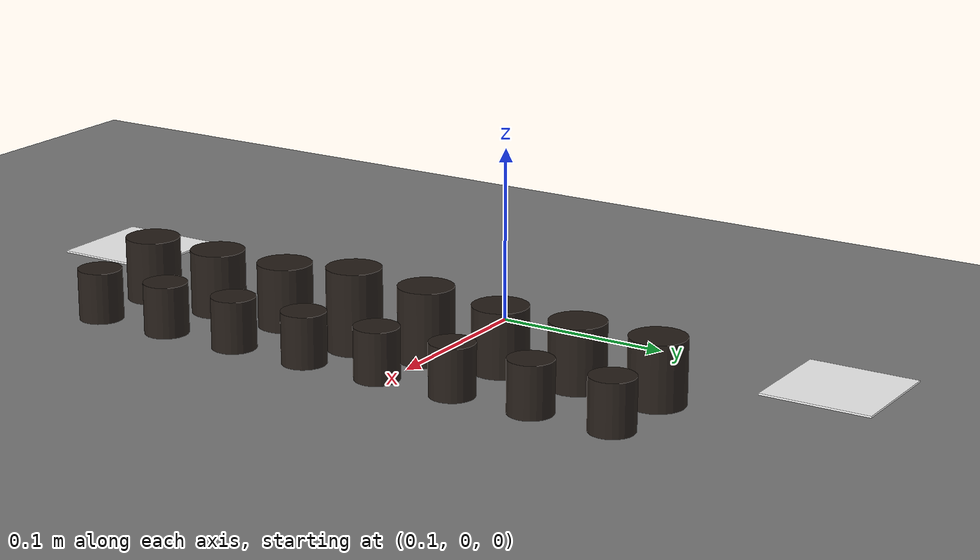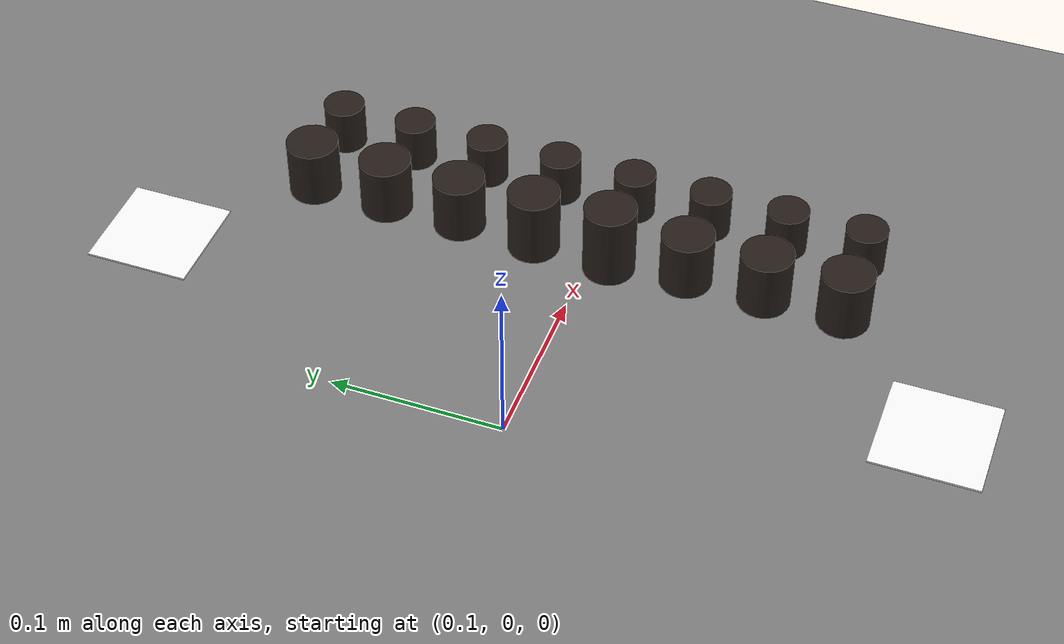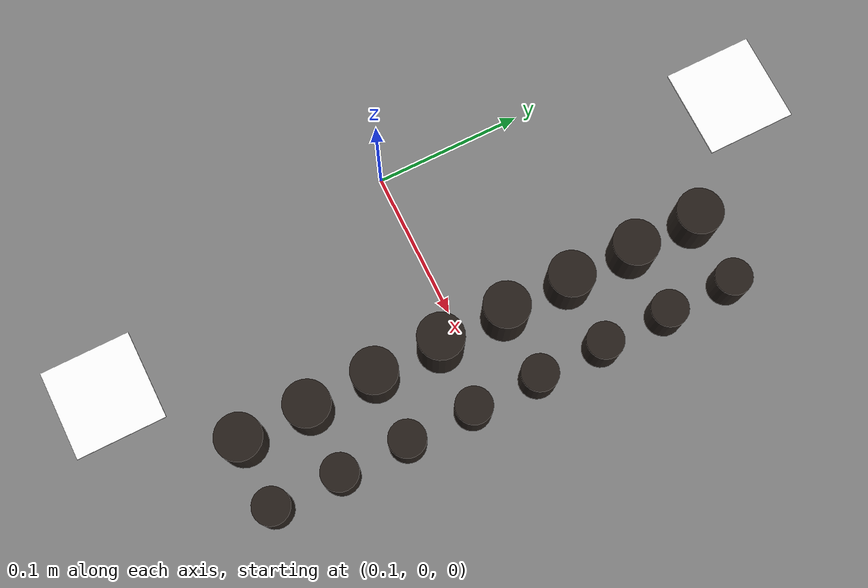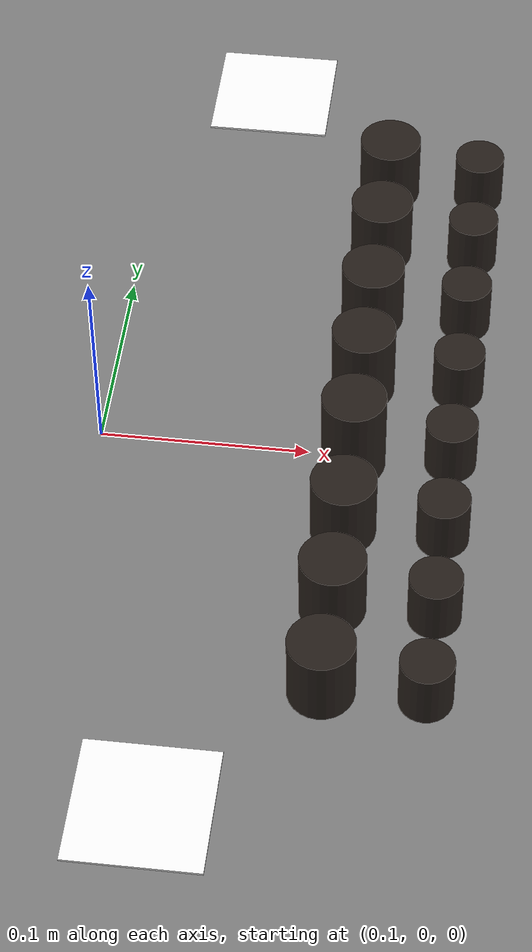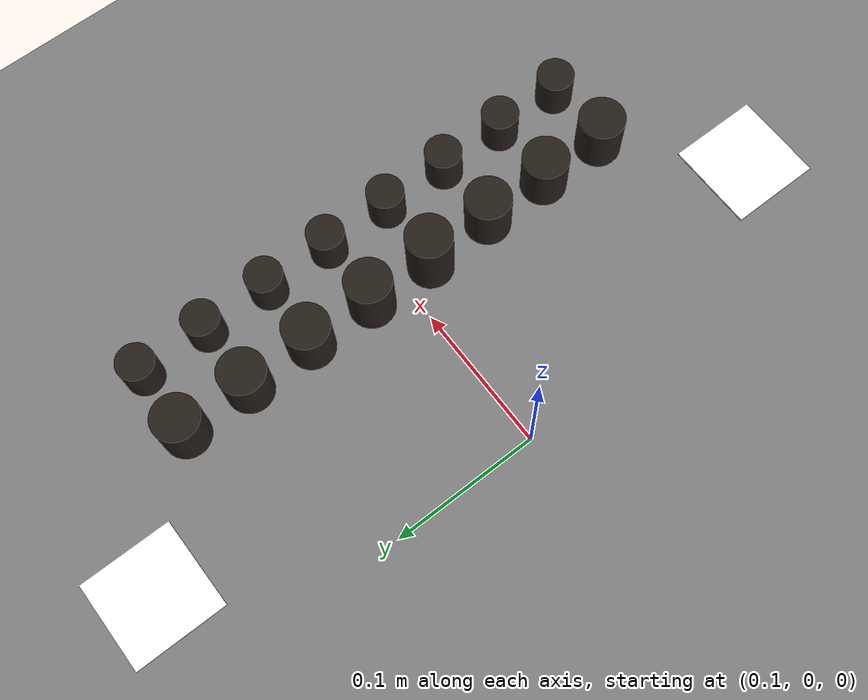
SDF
<sdf version="1.8">
 <world name="arm_world">
  <model name="ground_plane">
   <static>true</static>
   <link name="link">
    <collision name="collision">
     <geometry><plane><normal>0 0 1</normal><size>20 20</size></plane></geometry>
    </collision>
    <visual name="visual">
     <geometry><plane><normal>0 0 1</normal><size>20 20</size></plane></geometry>
     <material><ambient>0.3 0.3 0.3 1</ambient><diffuse>0.5 0.5 0.5 1</diffuse></material>
    </visual>
   </link>
  </model>
  <model name="bp_ra8">
   <pose>0.2225  0.1625 0.038 0 0 0</pose>
   <link name="l">
    <inertial>
     <mass>0.02</mass>
     <inertia>
      <ixx>0.000001</ixx>
      <iyy>0.000001</iyy>
      <izz>0.000001</izz>
      <ixy>0</ixy>
      <ixz>0</ixz>
      <iyz>0</iyz>
     </inertia>
    </inertial>
    <collision name="c">
     <geometry><cylinder><radius>0.015</radius><length>0.035</length></cylinder></geometry>
    </collision>
    <visual name="v">
     <geometry><cylinder><radius>0.015</radius><length>0.035</length></cylinder></geometry>
     <material><ambient>0.15 0.12 0.1 1</ambient><diffuse>0.15 0.12 0.1 1</diffuse></material>
    </visual>
   </link>
  </model>
  <model name="bp_nb8">
   <pose>0.2225  0.1175 0.038 0 0 0</pose>
   <link name="l">
    <inertial>
     <mass>0.02</mass>
     <inertia>
      <ixx>0.000001</ixx>
      <iyy>0.000001</iyy>
      <izz>0.000001</izz>
      <ixy>0</ixy>
      <ixz>0</ixz>
      <iyz>0</iyz>
     </inertia>
    </inertial>
    <collision name="c">
     <geometry><cylinder><radius>0.015</radius><length>0.035</length></cylinder></geometry>
    </collision>
    <visual name="v">
     <geometry><cylinder><radius>0.015</radius><length>0.035</length></cylinder></geometry>
     <material><ambient>0.15 0.12 0.1 1</ambient><diffuse>0.15 0.12 0.1 1</diffuse></material>
    </visual>
   </link>
  </model>
  <model name="bp_bc8">
   <pose>0.2225  0.0725 0.038 0 0 0</pose>
   <link name="l">
    <inertial>
     <mass>0.02</mass>
     <inertia>
      <ixx>0.000001</ixx>
      <iyy>0.000001</iyy>
      <izz>0.000001</izz>
      <ixy>0</ixy>
      <ixz>0</ixz>
      <iyz>0</iyz>
     </inertia>
    </inertial>
    <collision name="c">
     <geometry><cylinder><radius>0.015</radius><length>0.035</length></cylinder></geometry>
    </collision>
    <visual name="v">
     <geometry><cylinder><radius>0.015</radius><length>0.035</length></cylinder></geometry>
     <material><ambient>0.15 0.12 0.1 1</ambient><diffuse>0.15 0.12 0.1 1</diffuse></material>
    </visual>
   </link>
  </model>
  <model name="bp_qd8">
   <pose>0.2225  0.0275 0.038 0 0 0</pose>
   <link name="l">
    <inertial>
     <mass>0.02</mass>
     <inertia>
      <ixx>0.000001</ixx>
      <iyy>0.000001</iyy>
      <izz>0.000001</izz>
      <ixy>0</ixy>
      <ixz>0</ixz>
      <iyz>0</iyz>
     </inertia>
    </inertial>
    <collision name="c">
     <geometry><cylinder><radius>0.015</radius><length>0.040</length></cylinder></geometry>
    </collision>
    <visual name="v">
     <geometry><cylinder><radius>0.015</radius><length>0.040</length></cylinder></geometry>
     <material><ambient>0.15 0.12 0.1 1</ambient><diffuse>0.15 0.12 0.1 1</diffuse></material>
    </visual>
   </link>
  </model>
  <model name="bp_ke8">
   <pose>0.2225 -0.0175 0.038 0 0 0</pose>
   <link name="l">
    <inertial>
     <mass>0.02</mass>
     <inertia>
      <ixx>0.000001</ixx>
      <iyy>0.000001</iyy>
      <izz>0.000001</izz>
      <ixy>0</ixy>
      <ixz>0</ixz>
      <iyz>0</iyz>
     </inertia>
    </inertial>
    <collision name="c">
     <geometry><cylinder><radius>0.015</radius><length>0.045</length></cylinder></geometry>
    </collision>
    <visual name="v">
     <geometry><cylinder><radius>0.015</radius><length>0.045</length></cylinder></geometry>
     <material><ambient>0.15 0.12 0.1 1</ambient><diffuse>0.15 0.12 0.1 1</diffuse></material>
    </visual>
   </link>
  </model>
  <model name="bp_bf8">
   <pose>0.2225 -0.0625 0.038 0 0 0</pose>
   <link name="l">
    <inertial>
     <mass>0.02</mass>
     <inertia>
      <ixx>0.000001</ixx>
      <iyy>0.000001</iyy>
      <izz>0.000001</izz>
      <ixy>0</ixy>
      <ixz>0</ixz>
      <iyz>0</iyz>
     </inertia>
    </inertial>
    <collision name="c">
     <geometry><cylinder><radius>0.015</radius><length>0.035</length></cylinder></geometry>
    </collision>
    <visual name="v">
     <geometry><cylinder><radius>0.015</radius><length>0.035</length></cylinder></geometry>
     <material><ambient>0.15 0.12 0.1 1</ambient><diffuse>0.15 0.12 0.1 1</diffuse></material>
    </visual>
   </link>
  </model>
  <model name="bp_ng8">
   <pose>0.2225 -0.1075 0.038 0 0 0</pose>
   <link name="l">
    <inertial>
     <mass>0.02</mass>
     <inertia>
      <ixx>0.000001</ixx>
      <iyy>0.000001</iyy>
      <izz>0.000001</izz>
      <ixy>0</ixy>
      <ixz>0</ixz>
      <iyz>0</iyz>
     </inertia>
    </inertial>
    <collision name="c">
     <geometry><cylinder><radius>0.015</radius><length>0.035</length></cylinder></geometry>
    </collision>
    <visual name="v">
     <geometry><cylinder><radius>0.015</radius><length>0.035</length></cylinder></geometry>
     <material><ambient>0.15 0.12 0.1 1</ambient><diffuse>0.15 0.12 0.1 1</diffuse></material>
    </visual>
   </link>
  </model>
  <model name="bp_rh8">
   <pose>0.2225 -0.1525 0.038 0 0 0</pose>
   <link name="l">
    <inertial>
     <mass>0.02</mass>
     <inertia>
      <ixx>0.000001</ixx>
      <iyy>0.000001</iyy>
      <izz>0.000001</izz>
      <ixy>0</ixy>
      <ixz>0</ixz>
      <iyz>0</iyz>
     </inertia>
    </inertial>
    <collision name="c">
     <geometry><cylinder><radius>0.015</radius><length>0.035</length></cylinder></geometry>
    </collision>
    <visual name="v">
     <geometry><cylinder><radius>0.015</radius><length>0.035</length></cylinder></geometry>
     <material><ambient>0.15 0.12 0.1 1</ambient><diffuse>0.15 0.12 0.1 1</diffuse></material>
    </visual>
   </link>
  </model>
  <model name="aruco_0">
   <static>true</static>
   <pose>0.1555 -0.2195 0.0215 0 0 0</pose>
   <link name="link">
    <visual name="visual">
     <geometry><box><size>0.060 0.060 0.001</size></box></geometry>
     <material>
      <diffuse>1 1 1 1</diffuse>
      <pbr>
       <metal>
        <albedo_map>file:///home/mario/Desktop/Arm/robot_arm_chess/materials/textures/aruco_0.png</albedo_map>
       </metal>
      </pbr>
     </material>
    </visual>
   </link>
  </model>
  <model name="aruco_1">
   <static>true</static>
   <pose>0.1555 0.2295 0.0215 0 0 0</pose>
   <link name="link">
    <visual name="visual">
     <geometry><box><size>0.060 0.060 0.001</size></box></geometry>
     <material>
      <diffuse>1 1 1 1</diffuse>
      <pbr>
       <metal>
        <albedo_map>file:///home/mario/Desktop/Arm/robot_arm_chess/materials/textures/aruco_1.png</albedo_map>
       </metal>
      </pbr>
     </material>
    </visual>
   </link>
  </model>
  <model name="bp_pa7">
   <pose>0.2675  0.1625 0.035 0 0 0</pose>
   <link name="l">
    <inertial>
     <mass>0.015</mass>
     <inertia>
      <ixx>0.000001</ixx>
      <iyy>0.000001</iyy>
      <izz>0.000001</izz>
      <ixy>0</ixy>
      <ixz>0</ixz>
      <iyz>0</iyz>
     </inertia>
    </inertial>
    <collision name="c">
     <geometry><cylinder><radius>0.012</radius><length>0.028</length></cylinder></geometry>
    </collision>
    <visual name="v">
     <geometry><cylinder><radius>0.012</radius><length>0.028</length></cylinder></geometry>
     <material><ambient>0.15 0.12 0.1 1</ambient><diffuse>0.15 0.12 0.1 1</diffuse></material>
    </visual>
   </link>
  </model>
  <model name="bp_pb7">
   <pose>0.2675  0.1175 0.035 0 0 0</pose>
   <link name="l">
    <inertial>
     <mass>0.015</mass>
     <inertia>
      <ixx>0.000001</ixx>
      <iyy>0.000001</iyy>
      <izz>0.000001</izz>
      <ixy>0</ixy>
      <ixz>0</ixz>
      <iyz>0</iyz>
     </inertia>
    </inertial>
    <collision name="c">
     <geometry><cylinder><radius>0.012</radius><length>0.028</length></cylinder></geometry>
    </collision>
    <visual name="v">
     <geometry><cylinder><radius>0.012</radius><length>0.028</length></cylinder></geometry>
     <material><ambient>0.15 0.12 0.1 1</ambient><diffuse>0.15 0.12 0.1 1</diffuse></material>
    </visual>
   </link>
  </model>
  <model name="bp_pc7">
   <pose>0.2675  0.0725 0.035 0 0 0</pose>
   <link name="l">
    <inertial>
     <mass>0.015</mass>
     <inertia>
      <ixx>0.000001</ixx>
      <iyy>0.000001</iyy>
      <izz>0.000001</izz>
      <ixy>0</ixy>
      <ixz>0</ixz>
      <iyz>0</iyz>
     </inertia>
    </inertial>
    <collision name="c">
     <geometry><cylinder><radius>0.012</radius><length>0.028</length></cylinder></geometry>
    </collision>
    <visual name="v">
     <geometry><cylinder><radius>0.012</radius><length>0.028</length></cylinder></geometry>
     <material><ambient>0.15 0.12 0.1 1</ambient><diffuse>0.15 0.12 0.1 1</diffuse></material>
    </visual>
   </link>
  </model>
  <model name="bp_pd7">
   <pose>0.2675  0.0275 0.035 0 0 0</pose>
   <link name="l">
    <inertial>
     <mass>0.015</mass>
     <inertia>
      <ixx>0.000001</ixx>
      <iyy>0.000001</iyy>
      <izz>0.000001</izz>
      <ixy>0</ixy>
      <ixz>0</ixz>
      <iyz>0</iyz>
     </inertia>
    </inertial>
    <collision name="c">
     <geometry><cylinder><radius>0.012</radius><length>0.028</length></cylinder></geometry>
    </collision>
    <visual name="v">
     <geometry><cylinder><radius>0.012</radius><length>0.028</length></cylinder></geometry>
     <material><ambient>0.15 0.12 0.1 1</ambient><diffuse>0.15 0.12 0.1 1</diffuse></material>
    </visual>
   </link>
  </model>
  <model name="bp_pe7">
   <pose>0.2675 -0.0175 0.035 0 0 0</pose>
   <link name="l">
    <inertial>
     <mass>0.015</mass>
     <inertia>
      <ixx>0.000001</ixx>
      <iyy>0.000001</iyy>
      <izz>0.000001</izz>
      <ixy>0</ixy>
      <ixz>0</ixz>
      <iyz>0</iyz>
     </inertia>
    </inertial>
    <collision name="c">
     <geometry><cylinder><radius>0.012</radius><length>0.028</length></cylinder></geometry>
    </collision>
    <visual name="v">
     <geometry><cylinder><radius>0.012</radius><length>0.028</length></cylinder></geometry>
     <material><ambient>0.15 0.12 0.1 1</ambient><diffuse>0.15 0.12 0.1 1</diffuse></material>
    </visual>
   </link>
  </model>
  <model name="bp_pf7">
   <pose>0.2675 -0.0625 0.035 0 0 0</pose>
   <link name="l">
    <inertial>
     <mass>0.015</mass>
     <inertia>
      <ixx>0.000001</ixx>
      <iyy>0.000001</iyy>
      <izz>0.000001</izz>
      <ixy>0</ixy>
      <ixz>0</ixz>
      <iyz>0</iyz>
     </inertia>
    </inertial>
    <collision name="c">
     <geometry><cylinder><radius>0.012</radius><length>0.028</length></cylinder></geometry>
    </collision>
    <visual name="v">
     <geometry><cylinder><radius>0.012</radius><length>0.028</length></cylinder></geometry>
     <material><ambient>0.15 0.12 0.1 1</ambient><diffuse>0.15 0.12 0.1 1</diffuse></material>
    </visual>
   </link>
  </model>
  <model name="bp_pg7">
   <pose>0.2675 -0.1075 0.035 0 0 0</pose>
   <link name="l">
    <inertial>
     <mass>0.015</mass>
     <inertia>
      <ixx>0.000001</ixx>
      <iyy>0.000001</iyy>
      <izz>0.000001</izz>
      <ixy>0</ixy>
      <ixz>0</ixz>
      <iyz>0</iyz>
     </inertia>
    </inertial>
    <collision name="c">
     <geometry><cylinder><radius>0.012</radius><length>0.028</length></cylinder></geometry>
    </collision>
    <visual name="v">
     <geometry><cylinder><radius>0.012</radius><length>0.028</length></cylinder></geometry>
     <material><ambient>0.15 0.12 0.1 1</ambient><diffuse>0.15 0.12 0.1 1</diffuse></material>
    </visual>
   </link>
  </model>
  <model name="bp_ph7">
   <pose>0.2675 -0.1525 0.035 0 0 0</pose>
   <link name="l">
    <inertial>
     <mass>0.015</mass>
     <inertia>
      <ixx>0.000001</ixx>
      <iyy>0.000001</iyy>
      <izz>0.000001</izz>
      <ixy>0</ixy>
      <ixz>0</ixz>
      <iyz>0</iyz>
     </inertia>
    </inertial>
    <collision name="c">
     <geometry><cylinder><radius>0.012</radius><length>0.028</length></cylinder></geometry>
    </collision>
    <visual name="v">
     <geometry><cylinder><radius>0.012</radius><length>0.028</length></cylinder></geometry>
     <material><ambient>0.15 0.12 0.1 1</ambient><diffuse>0.15 0.12 0.1 1</diffuse></material>
    </visual>
   </link>
  </model>
 </world>
</sdf>
